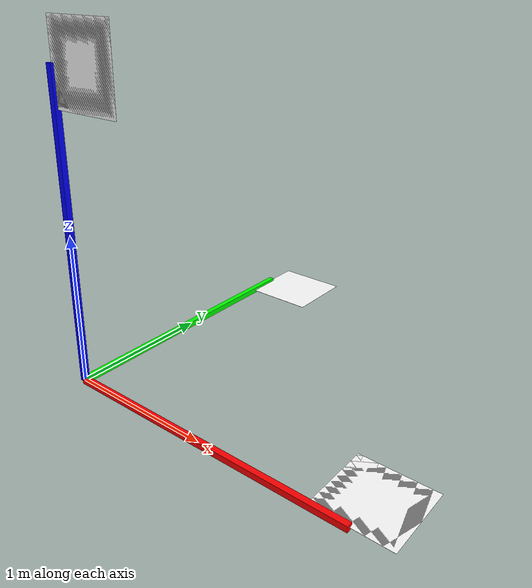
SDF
<?xml version="1.0"?>
<sdf version="1.6">
  <model name="axes">
    <static>true</static>

    <link name="axes_link">
      <visual name="x_axis">
        <cast_shadows>0</cast_shadows>
        <pose>1 0 0 0 0 0</pose>
        <geometry>
          <box>
            <size>2 0.04 0.04</size>
          </box>
        </geometry>
        <material>
          <ambient>1 0 0 1</ambient>
          <diffuse>1 0 0 1</diffuse>
          <emissive>1 0 0 1</emissive>
          <specular>1 1 1 1</specular>
        </material>
      </visual>

      <visual name="y_axis">
        <cast_shadows>0</cast_shadows>
        <pose>0 1 0 0 0 0</pose>
        <geometry>
          <box>
            <size>0.04 2 0.04</size>
          </box>
        </geometry>
        <material>
          <ambient>0 1 0 1</ambient>
          <diffuse>0 1 0 1</diffuse>
          <emissive>0 1 0 1</emissive>
          <specular>1 1 1 1</specular>
        </material>
      </visual>

      <visual name="z_axis">
        <cast_shadows>0</cast_shadows>
        <pose>0 0 1 0 0 0</pose>
        <geometry>
          <box>
            <size>0.04 0.04 2</size>
          </box>
        </geometry>
        <material>
          <ambient>0 0 1 1</ambient>
          <diffuse>0 0 1 1</diffuse>
          <emissive>0 0 1 1</emissive>
          <specular>1 1 1 1</specular>
        </material>
      </visual>

      <visual name="x_text_visual">
        <pose>2 0.25 0 0 0 0</pose>
        <geometry>
          <plane>
            <normal>0 0 1</normal>
            <size>0.5 0.5</size>
          </plane>
        </geometry>
        <material>
          <ambient>1 1 1 1</ambient>
          <diffuse>1 1 1 1</diffuse>
          <pbr>
            <metal>
              <albedo_map>model://axes/images/X.png</albedo_map>
              <metalness>0.0</metalness>
            </metal>
          </pbr>
        </material>
      </visual>

      <visual name="y_text_visual">
        <pose>0.25 2 0 0 0 0</pose>
        <geometry>
          <plane>
            <normal>0 0 1</normal>
            <size>0.5 0.5</size>
          </plane>
        </geometry>
        <material>
          <ambient>1 1 1 1</ambient>
          <diffuse>1 1 1 1</diffuse>
          <pbr>
            <metal>
              <albedo_map>model://axes/images/Y.png</albedo_map>
              <metalness>0.0</metalness>
            </metal>
          </pbr>
        </material>
      </visual>

      <visual name="x_text_reverse_visual">
        <pose>2 0.25 0 0 0 0</pose>
        <geometry>
          <plane>
            <normal>0 0 -1</normal>
            <size>0.5 0.5</size>
          </plane>
        </geometry>
        <material>
          <ambient>1 1 1 1</ambient>
          <diffuse>1 1 1 1</diffuse>
          <pbr>
            <metal>
              <albedo_map>model://axes/images/X.png</albedo_map>
              <metalness>0.0</metalness>
            </metal>
          </pbr>
        </material>
      </visual>

      <visual name="y_text_reverse_visual">
        <pose>0.25 2 0 0 0 0</pose>
        <geometry>
          <plane>
            <normal>0 0 -1</normal>
            <size>0.5 0.5</size>
          </plane>
        </geometry>
        <material>
          <ambient>1 1 1 1</ambient>
          <diffuse>1 1 1 1</diffuse>
          <pbr>
            <metal>
              <albedo_map>model://axes/images/Y.png</albedo_map>
              <metalness>0.0</metalness>
            </metal>
          </pbr>
        </material>
      </visual>

      <visual name="z_text_visual">
        <pose>0.25 0 2 0 0 0</pose>
        <geometry>
          <plane>
            <normal>0 1 0</normal>
            <size>0.5 0.5</size>
          </plane>
        </geometry>
        <material>
          <ambient>1 1 1 1</ambient>
          <diffuse>1 1 1 1</diffuse>
          <pbr>
            <metal>
              <albedo_map>model://axes/images/Z.png</albedo_map>
              <metalness>0.0</metalness>
            </metal>
          </pbr>
        </material>
      </visual>

      <visual name="z_text_reverse_visual">
        <pose>0.25 0 2 0 0 0</pose>
        <geometry>
          <plane>
            <normal>0 -1 0</normal>
            <size>0.5 0.5</size>
          </plane>
        </geometry>
        <material>
          <ambient>1 1 1 1</ambient>
          <diffuse>1 1 1 1</diffuse>
          <pbr>
            <metal>
              <albedo_map>model://axes/images/Z.png</albedo_map>
              <metalness>0.0</metalness>
            </metal>
          </pbr>
        </material>
      </visual>

    </link>
  </model>
</sdf>
